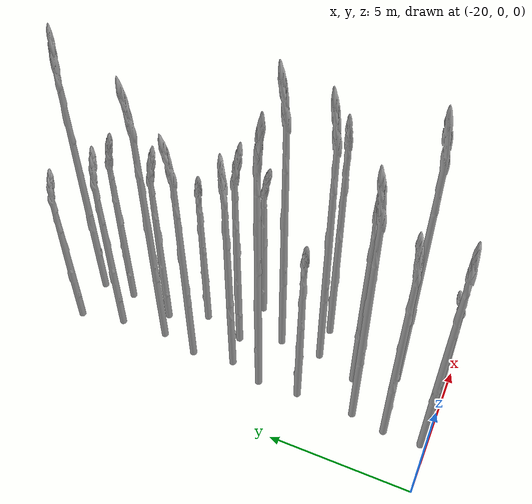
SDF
<sdf version="1.6">
 <world name="default">
  <model name="asparagus_30">
   <pose>-18.2426 0.221658 0 0 -0 0.227744</pose>
   <static>1</static>
   <link name="asparagus_30">
    <visual name="visual">
     <geometry>
      <mesh><uri>model://Asparagus/meshes/asparagus.obj</uri><scale>0.3 0.3 0.477221</scale></mesh>
     </geometry>
    </visual>
    <collision name="collision">
     <geometry>
      <mesh><uri>model://Asparagus/meshes/asparagus.obj</uri><scale>0.3 0.3 0.477221</scale></mesh>
     </geometry>
    </collision>
   </link>
  </model>
  <model name="asparagus_33">
   <pose>-18.2865 1.57433 0 0 -0 0.87551</pose>
   <static>1</static>
   <link name="asparagus_33">
    <visual name="visual">
     <geometry>
      <mesh><uri>model://Asparagus/meshes/asparagus.obj</uri><scale>0.3 0.3 0.469335</scale></mesh>
     </geometry>
    </visual>
    <collision name="collision">
     <geometry>
      <mesh><uri>model://Asparagus/meshes/asparagus.obj</uri><scale>0.3 0.3 0.469335</scale></mesh>
     </geometry>
    </collision>
   </link>
  </model>
  <model name="asparagus_36">
   <pose>-18.1309 2.79364 0 0 -0 1.51272</pose>
   <static>1</static>
   <link name="asparagus_36">
    <visual name="visual">
     <geometry>
      <mesh><uri>model://Asparagus/meshes/asparagus.obj</uri><scale>0.3 0.3 0.551831</scale></mesh>
     </geometry>
    </visual>
    <collision name="collision">
     <geometry>
      <mesh><uri>model://Asparagus/meshes/asparagus.obj</uri><scale>0.3 0.3 0.551831</scale></mesh>
     </geometry>
    </collision>
   </link>
  </model>
  <model name="asparagus_39">
   <pose>-18.1932 4.73271 0 0 -0 -2.64593</pose>
   <static>1</static>
   <link name="asparagus_39">
    <visual name="visual">
     <geometry>
      <mesh><uri>model://Asparagus/meshes/asparagus.obj</uri><scale>0.3 0.3 0.389807</scale></mesh>
     </geometry>
    </visual>
    <collision name="collision">
     <geometry>
      <mesh><uri>model://Asparagus/meshes/asparagus.obj</uri><scale>0.3 0.3 0.389807</scale></mesh>
     </geometry>
    </collision>
   </link>
  </model>
  <model name="asparagus_42">
   <pose>-18.2793 6.12615 0 0 -0 -1.99663</pose>
   <static>1</static>
   <link name="asparagus_42">
    <visual name="visual">
     <geometry>
      <mesh><uri>model://Asparagus/meshes/asparagus.obj</uri><scale>0.3 0.3 0.590509</scale></mesh>
     </geometry>
    </visual>
    <collision name="collision">
     <geometry>
      <mesh><uri>model://Asparagus/meshes/asparagus.obj</uri><scale>0.3 0.3 0.590509</scale></mesh>
     </geometry>
    </collision>
   </link>
  </model>
  <model name="asparagus_45">
   <pose>-17.7572 7.4547 0 0 -0 0.73391</pose>
   <static>1</static>
   <link name="asparagus_45">
    <visual name="visual">
     <geometry>
      <mesh><uri>model://Asparagus/meshes/asparagus.obj</uri><scale>0.3 0.3 0.474122</scale></mesh>
     </geometry>
    </visual>
    <collision name="collision">
     <geometry>
      <mesh><uri>model://Asparagus/meshes/asparagus.obj</uri><scale>0.3 0.3 0.474122</scale></mesh>
     </geometry>
    </collision>
   </link>
  </model>
  <model name="asparagus_48">
   <pose>-18.0313 8.99182 0 0 -0 1.87498</pose>
   <static>1</static>
   <link name="asparagus_48">
    <visual name="visual">
     <geometry>
      <mesh><uri>model://Asparagus/meshes/asparagus.obj</uri><scale>0.3 0.3 0.49781</scale></mesh>
     </geometry>
    </visual>
    <collision name="collision">
     <geometry>
      <mesh><uri>model://Asparagus/meshes/asparagus.obj</uri><scale>0.3 0.3 0.49781</scale></mesh>
     </geometry>
    </collision>
   </link>
  </model>
  <model name="asparagus_51">
   <pose>-17.7103 10.3318 0 0 -0 1.56315</pose>
   <static>1</static>
   <link name="asparagus_51">
    <visual name="visual">
     <geometry>
      <mesh><uri>model://Asparagus/meshes/asparagus.obj</uri><scale>0.3 0.3 0.556655</scale></mesh>
     </geometry>
    </visual>
    <collision name="collision">
     <geometry>
      <mesh><uri>model://Asparagus/meshes/asparagus.obj</uri><scale>0.3 0.3 0.556655</scale></mesh>
     </geometry>
    </collision>
   </link>
  </model>
  <model name="asparagus_54">
   <pose>-17.7062 11.9879 0 0 -0 -0.200105</pose>
   <static>1</static>
   <link name="asparagus_54">
    <visual name="visual">
     <geometry>
      <mesh><uri>model://Asparagus/meshes/asparagus.obj</uri><scale>0.3 0.3 0.412093</scale></mesh>
     </geometry>
    </visual>
    <collision name="collision">
     <geometry>
      <mesh><uri>model://Asparagus/meshes/asparagus.obj</uri><scale>0.3 0.3 0.412093</scale></mesh>
     </geometry>
    </collision>
   </link>
  </model>
  <model name="asparagus_57">
   <pose>-18.0025 13.6079 0 0 -0 -0.248765</pose>
   <static>1</static>
   <link name="asparagus_57">
    <visual name="visual">
     <geometry>
      <mesh><uri>model://Asparagus/meshes/asparagus.obj</uri><scale>0.3 0.3 0.352447</scale></mesh>
     </geometry>
    </visual>
    <collision name="collision">
     <geometry>
      <mesh><uri>model://Asparagus/meshes/asparagus.obj</uri><scale>0.3 0.3 0.352447</scale></mesh>
     </geometry>
    </collision>
   </link>
  </model>
  <model name="asparagus_90">
   <pose>-16.7464 0.277609 0 0 -0 1.88987</pose>
   <static>1</static>
   <link name="asparagus_90">
    <visual name="visual">
     <geometry>
      <mesh><uri>model://Asparagus/meshes/asparagus.obj</uri><scale>0.3 0.3 0.313296</scale></mesh>
     </geometry>
    </visual>
    <collision name="collision">
     <geometry>
      <mesh><uri>model://Asparagus/meshes/asparagus.obj</uri><scale>0.3 0.3 0.313296</scale></mesh>
     </geometry>
    </collision>
   </link>
  </model>
  <model name="asparagus_93">
   <pose>-16.2001 1.78421 0 0 -0 2.19874</pose>
   <static>1</static>
   <link name="asparagus_93">
    <visual name="visual">
     <geometry>
      <mesh><uri>model://Asparagus/meshes/asparagus.obj</uri><scale>0.3 0.3 0.590323</scale></mesh>
     </geometry>
    </visual>
    <collision name="collision">
     <geometry>
      <mesh><uri>model://Asparagus/meshes/asparagus.obj</uri><scale>0.3 0.3 0.590323</scale></mesh>
     </geometry>
    </collision>
   </link>
  </model>
  <model name="asparagus_96">
   <pose>-16.6824 3.18759 0 0 -0 0.302521</pose>
   <static>1</static>
   <link name="asparagus_96">
    <visual name="visual">
     <geometry>
      <mesh><uri>model://Asparagus/meshes/asparagus.obj</uri><scale>0.3 0.3 0.447232</scale></mesh>
     </geometry>
    </visual>
    <collision name="collision">
     <geometry>
      <mesh><uri>model://Asparagus/meshes/asparagus.obj</uri><scale>0.3 0.3 0.447232</scale></mesh>
     </geometry>
    </collision>
   </link>
  </model>
  <model name="asparagus_99">
   <pose>-16.3223 4.69905 0 0 -0 1.72155</pose>
   <static>1</static>
   <link name="asparagus_99">
    <visual name="visual">
     <geometry>
      <mesh><uri>model://Asparagus/meshes/asparagus.obj</uri><scale>0.3 0.3 0.576966</scale></mesh>
     </geometry>
    </visual>
    <collision name="collision">
     <geometry>
      <mesh><uri>model://Asparagus/meshes/asparagus.obj</uri><scale>0.3 0.3 0.576966</scale></mesh>
     </geometry>
    </collision>
   </link>
  </model>
  <model name="asparagus_102">
   <pose>-16.2976 6.20346 0 0 -0 1.74757</pose>
   <static>1</static>
   <link name="asparagus_102">
    <visual name="visual">
     <geometry>
      <mesh><uri>model://Asparagus/meshes/asparagus.obj</uri><scale>0.3 0.3 0.594497</scale></mesh>
     </geometry>
    </visual>
    <collision name="collision">
     <geometry>
      <mesh><uri>model://Asparagus/meshes/asparagus.obj</uri><scale>0.3 0.3 0.594497</scale></mesh>
     </geometry>
    </collision>
   </link>
  </model>
  <model name="asparagus_105">
   <pose>-16.7227 7.55244 0 0 -0 -0.961105</pose>
   <static>1</static>
   <link name="asparagus_105">
    <visual name="visual">
     <geometry>
      <mesh><uri>model://Asparagus/meshes/asparagus.obj</uri><scale>0.3 0.3 0.458892</scale></mesh>
     </geometry>
    </visual>
    <collision name="collision">
     <geometry>
      <mesh><uri>model://Asparagus/meshes/asparagus.obj</uri><scale>0.3 0.3 0.458892</scale></mesh>
     </geometry>
    </collision>
   </link>
  </model>
  <model name="asparagus_108">
   <pose>-16.3618 9.09941 0 0 -0 -2.39701</pose>
   <static>1</static>
   <link name="asparagus_108">
    <visual name="visual">
     <geometry>
      <mesh><uri>model://Asparagus/meshes/asparagus.obj</uri><scale>0.3 0.3 0.363094</scale></mesh>
     </geometry>
    </visual>
    <collision name="collision">
     <geometry>
      <mesh><uri>model://Asparagus/meshes/asparagus.obj</uri><scale>0.3 0.3 0.363094</scale></mesh>
     </geometry>
    </collision>
   </link>
  </model>
  <model name="asparagus_111">
   <pose>-16.7997 10.4841 0 0 -0 -0.910835</pose>
   <static>1</static>
   <link name="asparagus_111">
    <visual name="visual">
     <geometry>
      <mesh><uri>model://Asparagus/meshes/asparagus.obj</uri><scale>0.3 0.3 0.406954</scale></mesh>
     </geometry>
    </visual>
    <collision name="collision">
     <geometry>
      <mesh><uri>model://Asparagus/meshes/asparagus.obj</uri><scale>0.3 0.3 0.406954</scale></mesh>
     </geometry>
    </collision>
   </link>
  </model>
  <model name="asparagus_114">
   <pose>-16.4977 12.2088 0 0 -0 -1.31018</pose>
   <static>1</static>
   <link name="asparagus_114">
    <visual name="visual">
     <geometry>
      <mesh><uri>model://Asparagus/meshes/asparagus.obj</uri><scale>0.3 0.3 0.395313</scale></mesh>
     </geometry>
    </visual>
    <collision name="collision">
     <geometry>
      <mesh><uri>model://Asparagus/meshes/asparagus.obj</uri><scale>0.3 0.3 0.395313</scale></mesh>
     </geometry>
    </collision>
   </link>
  </model>
  <model name="asparagus_117">
   <pose>-16.4476 13.5599 0 0 -0 0.319309</pose>
   <static>1</static>
   <link name="asparagus_117">
    <visual name="visual">
     <geometry>
      <mesh><uri>model://Asparagus/meshes/asparagus.obj</uri><scale>0.3 0.3 0.556813</scale></mesh>
     </geometry>
    </visual>
    <collision name="collision">
     <geometry>
      <mesh><uri>model://Asparagus/meshes/asparagus.obj</uri><scale>0.3 0.3 0.556813</scale></mesh>
     </geometry>
    </collision>
   </link>
  </model>
  <model name="asparagus_159">
   <pose>-15.1842 4.67139 0 0 -0 -3.13617</pose>
   <static>1</static>
   <link name="asparagus_159">
    <visual name="visual">
     <geometry>
      <mesh><uri>model://Asparagus/meshes/asparagus.obj</uri><scale>0.3 0.3 0.503711</scale></mesh>
     </geometry>
    </visual>
    <collision name="collision">
     <geometry>
      <mesh><uri>model://Asparagus/meshes/asparagus.obj</uri><scale>0.3 0.3 0.503711</scale></mesh>
     </geometry>
    </collision>
   </link>
  </model>
  <model name="asparagus_165">
   <pose>-15.097 7.30651 0 0 -0 -1.58997</pose>
   <static>1</static>
   <link name="asparagus_165">
    <visual name="visual">
     <geometry>
      <mesh><uri>model://Asparagus/meshes/asparagus.obj</uri><scale>0.3 0.3 0.355464</scale></mesh>
     </geometry>
    </visual>
    <collision name="collision">
     <geometry>
      <mesh><uri>model://Asparagus/meshes/asparagus.obj</uri><scale>0.3 0.3 0.355464</scale></mesh>
     </geometry>
    </collision>
   </link>
  </model>
 </world>
</sdf>
